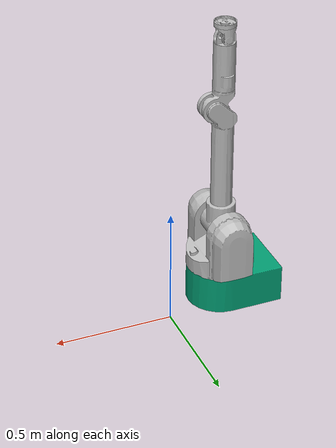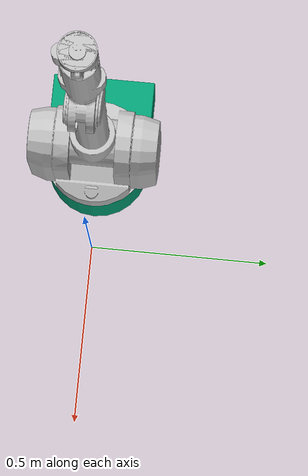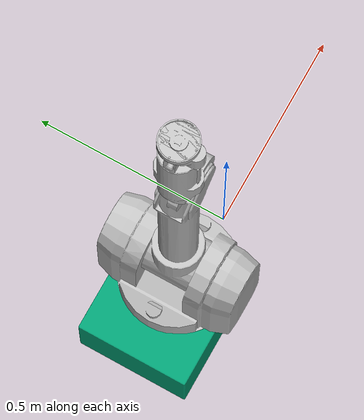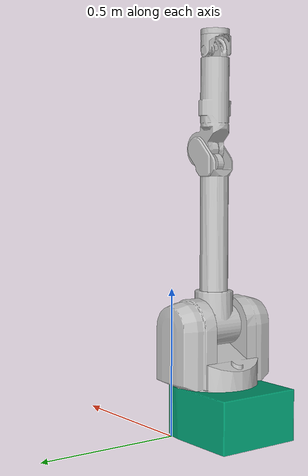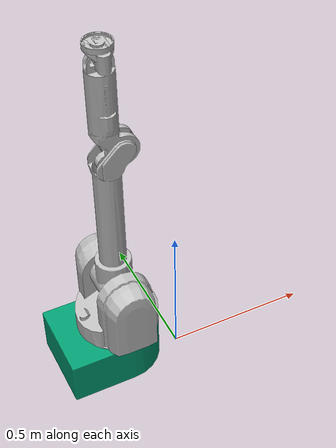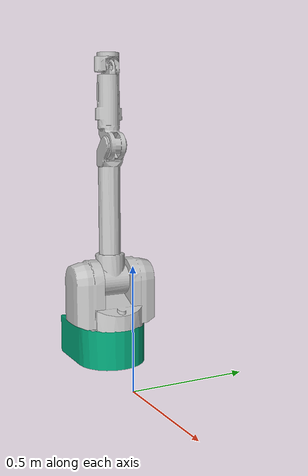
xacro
<?xml version="1.0"?>
<robot name="wam" xmlns:xacro="http://www.ros.org/wiki/xacro">

  <!-- Import all Gazebo-customization elements, including Gazebo colors -->
  <!-- xacro:include filename="$(find wam_description)/urdf/wam.gazebo" /-->

  <!-- Constants for robot dimensions -->
  <xacro:property name="PI" value="3.1415926535897931"/>
  <xacro:property name="joint_damping" value="100.0" />
  <xacro:property name="joint_friction" value="0.0" />
  <xacro:property name="joint_effort_limit" value="30.0" />
  <xacro:property name="joint_velocity_limit" value="2.0" />
  <xacro:property name="mechanical_reduction" value="1.0" />

  <!-- Used for fixing robot to Gazebo 'base_link' -->
  <link name="world"/>
  <joint name="fwf" type="fixed">
    <parent link="world"/>
    <child link="base_footprint"/>
  </joint>

  <!-- BASE FOOTPRINT -->
  <!-- base_footprint is a fictitious link(frame) that is on the ground right below base_link origin,
             navigation stack depends on this frame -->
  <link name="base_footprint">
      <visual>
          <origin xyz="0 0 0" rpy="0 0 0" />
          <geometry>
             <box size="0.001 0.001 0.001" />
          </geometry>
      </visual>

      <collision>
          <origin xyz="0 0 0" rpy="0 0 0" />
          <geometry>
            <box size="0.001 0.001 0.001" />
         </geometry>
     </collision>
  </link>

  <!-- Import Barrett WAM robot xacro file description -->
  <xacro:include filename="$(find wam_description)/urdf/wam_arm.urdf.xacro" />

  <joint name="base_footprint_wam_joint" type="fixed">
     <origin xyz="-0.220 0 0.410" rpy="0 0 0" />
     <parent link="base_footprint"/>
     <child link="wam_base_link"/>
     <!-- axis xyz="0 0 0" / -->
  </joint>

  <!-- GRIPPER -->

</robot>

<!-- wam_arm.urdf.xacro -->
<robot name="wam" xmlns:xacro="http://www.ros.org/wiki/xacro">

  <!-- Import all Gazebo-customization elements, including Gazebo colors -->
  <xacro:include filename="$(find wam_description)/urdf/wam.gazebo" />

  <!-- Constants for robot dimensions -->
  <xacro:property name="PI" value="3.1415926535897931"/>
  <xacro:property name="joint_damping" value="100.0" />
  <xacro:property name="joint_friction" value="0.0" />
  <xacro:property name="joint_effort_limit" value="30.0" />
  <xacro:property name="joint_velocity_limit" value="2.0" />
  <xacro:property name="mechanical_reduction" value="1.0" />

  <!-- BARRETT WAM ARM -->
  <!-- BASE_LINK (RED) -->
  <link name="wam_base_link">
    <inertial>
      <mass value="5.0" />
      <origin xyz="0 0 0" />
      <inertia  ixx="5.0" ixy="0.0"  ixz="0.0"  iyy="5.0"  iyz="0.0"  izz="5.0" />
    </inertial>
    <visual>
       <origin xyz="0 0 0" rpy="0 0 0" />
       <geometry>
	     <mesh filename="package://wam_description/meshes/wambase.dae"/>
       </geometry>
    </visual>
    <collision>
       <origin xyz="0 0 0" rpy="0 0 0 " />
       <geometry>
         <mesh filename="package://wam_description/meshes/wambase.dae"/>
       </geometry>
    </collision>
  </link>

  <!-- WAM ARM -->
  <link name="wam_link1">
    <inertial>
      <mass value="2.3936"/>
      <origin rpy="0 0 0" xyz="0.0 0.0 0.0"/>
      <inertia ixx="1.0" ixy="0.0" ixz="0.0" iyy="1.0" iyz="0.0" izz="1.0"/>
    </inertial>
    <visual>
      <origin rpy="0 0 0" xyz="0.0 0.0 0.0"/>
      <geometry name="wam_link1_visual">
        <mesh filename="package://wam_description/meshes/wam1.dae" scale="1.0 1.0 1.0"/>
      </geometry>
      <material name="Grey">
        <color rgba="0.75 0.75 0.75 1.0"/>
      </material>
    </visual>
    <collision>
      <origin rpy="0 0 0" xyz="0.0 0.0 0.0"/>
      <geometry name="wam_link1_collision">
        <mesh filename="package://wam_description/meshes/wam1.dae" scale="1.0 1.0 1.0"/>
      </geometry>
      <contact_coefficients kd="1.0" kp="1000.0" mu="0"/>
    </collision>
  </link>

  <joint name="j1_joint" type="revolute">
    <parent link="wam_base_link"/>
    <child link="wam_link1"/>
    <!-- origin xyz="0.125 0 0.55" rpy="0 0 0" / -->
    <origin xyz="0.0 0 0.0" rpy="0 0 0" />
    <axis xyz="0 0 1"/>
    <limit effort="${joint_effort_limit}" lower="-2.6" upper="2.6" velocity="${joint_velocity_limit}"/>
    <dynamics damping="${joint_damping}" friction="${joint_friction}"/>
  </joint>

  <transmission name="j1_transmission">
	<type>transmission_interface/SimpleTransmission</type>
    <joint name="j1_joint"/>
    <actuator name="j1">
	  <hardwareInterface>EffortJointInterface</hardwareInterface>
      <mechanicalReduction>1</mechanicalReduction>
      <motorTorqueConstant>1</motorTorqueConstant>
    </actuator>
  </transmission>

  <link name="wam_link2">
    <inertial>
      <origin rpy="0 0 0" xyz="0 0 0"/>
      <mass value="1.8487"/>
      <inertia ixx="1.0" ixy="0.0" ixz="0.0" iyy="0.1" iyz="0.0" izz="0.1"/>
    </inertial>
    <visual>
      <origin rpy="0 0 0" xyz="0.0 0.0 0.0"/>
      <geometry name="wam_link2_visual">
        <mesh filename="package://wam_description/meshes/wam2.dae" scale="1.0 1.0 1.0"/>
      </geometry>
      <material name="Grey">
        <color rgba="0.75 0.75 0.75 1.0"/>
      </material>
    </visual>
    <collision>
      <origin rpy="0 0 0" xyz="0.0 0.0 0.0"/>
      <geometry name="wam_link2_collision">
        <mesh filename="package://wam_description/meshes/wam2.dae" scale="1.0 1.0 1.0"/>
      </geometry>
      <contact_coefficients kd="1.0" kp="1000.0" mu="0"/>
    </collision>
  </link>

  <joint name="j2_joint" type="revolute">
    <parent link="wam_link1"/>
    <child link="wam_link2"/>
    <origin rpy="0 0 0" xyz="0.0 0.0 0.0"/>
    <axis xyz="0 1 0"/>
    <limit effort="${joint_effort_limit}" lower="-2.0" upper="2.0" velocity="${joint_velocity_limit}"/>
    <dynamics damping="${joint_damping}" friction="${joint_friction}"/>
  </joint>

  <transmission name="j2_transmission">
	<type>transmission_interface/SimpleTransmission</type>
    <joint name="j2_joint"/>
    <actuator name="j2">
	  <hardwareInterface>EffortJointInterface</hardwareInterface>
      <mechanicalReduction>1</mechanicalReduction>
      <motorTorqueConstant>1</motorTorqueConstant>
    </actuator>
  </transmission>

  <link name="wam_link3">
    <inertial>
      <mass value="0.43"/>
      <origin rpy="0 0 0" xyz="0 0 0.225"/>
      <inertia ixx="1.0" ixy="0.0" ixz="0.0" iyy="0.1" iyz="0.0" izz="0.1"/>
    </inertial>
    <visual>
      <origin rpy="0 0 0" xyz="0.0 0.0 0.0"/>
      <geometry name="wam_link3_visual">
        <mesh filename="package://wam_description/meshes/wam3.dae" scale="1.0 1.0 1.0"/>
      </geometry>
      <material name="Grey">
        <color rgba="0.75 0.75 0.75 1.0"/>
      </material>
    </visual>
    <collision>
      <origin rpy="0 0 0" xyz="0.0 0.0 0.0"/>
      <geometry name="wam_link3_collision">
        <mesh filename="package://wam_description/meshes/wam3.dae" scale="1.0 1.0 1.0"/>
      </geometry>
      <contact_coefficients kd="1.0" kp="1000.0" mu="0"/>
    </collision>
  </link>

  <joint name="j3_joint" type="revolute">
    <parent link="wam_link2"/>
    <child link="wam_link3"/>
    <origin rpy="0 0 0" xyz="0.0 0.0 0.0"/>
    <axis xyz="0 0 1"/>
    <limit effort="${joint_effort_limit}" lower="-2.8" upper="2.8" velocity="${joint_velocity_limit}"/>
    <dynamics damping="${joint_damping}" friction="${joint_friction}"/>
  </joint>

  <transmission name="j3_transmission">
	<type>transmission_interface/SimpleTransmission</type>
    <joint name="j3_joint"/>
    <actuator name="j3">
	  <hardwareInterface>EffortJointInterface</hardwareInterface>
      <mechanicalReduction>1</mechanicalReduction>
      <motorTorqueConstant>1</motorTorqueConstant>
    </actuator>
  </transmission>

  <link name="wam_link4">
    <inertial>
      <mass value="0.52"/>
      <origin rpy="0 0 0" xyz="-0.045 -0.15 0"/>
      <inertia ixx="1.0" ixy="0.0" ixz="0.0" iyy="0.1" iyz="0.0" izz="0.1"/>
    </inertial>
    <visual>
      <origin rpy="0 0 0" xyz="0.0 0.0 0.0"/>
      <geometry name="wam_link4_visual">
        <mesh filename="package://wam_description/meshes/wam4.dae" scale="1.0 1.0 1.0"/>
      </geometry>
      <material name="Grey">
        <color rgba="0.75 0.75 0.75 1.0"/>
      </material>
    </visual>
    <collision>
      <origin rpy="0 0 0" xyz="0.0 0.0 0.0"/>
      <geometry name="wam_link4_collision">
        <mesh filename="package://wam_description/meshes/wam4.dae" scale="1.0 1.0 1.0"/>
      </geometry>
      <contact_coefficients kd="1.0" kp="1000.0" mu="0"/>
    </collision>
  </link>

  <joint name="j4_joint" type="revolute">
    <parent link="wam_link3"/>
    <child link="wam_link4"/>
    <origin rpy="-1.57079632679 0 0" xyz="0.045 0.0 0.55"/>
    <axis xyz="0 0 1"/>
    <limit effort="${joint_effort_limit}" lower="-0.9" upper="2.8" velocity="${joint_velocity_limit}"/>
    <dynamics damping="${joint_damping}" friction="${joint_friction}"/>
  </joint>

  <transmission name="j4_transmission">
	<type>transmission_interface/SimpleTransmission</type>
    <joint name="j4_joint"/>
    <actuator name="j4">
	  <hardwareInterface>EffortJointInterface</hardwareInterface>
      <mechanicalReduction>1</mechanicalReduction>
      <motorTorqueConstant>1</motorTorqueConstant>
    </actuator>
  </transmission>

  <link name="wam_link5">
    <inertial>
      <origin rpy="0 0 0" xyz="0 0 0"/>
      <mass value="0.076675"/>
      <inertia ixx="1.0" ixy="0.0" ixz="0.0" iyy="0.1" iyz="0.0" izz="0.1"/>
    </inertial>
    <visual>
      <origin rpy="0 0 0" xyz="0.0 0.0 0.0"/>
      <geometry name="wam_link5_visual">
        <mesh filename="package://wam_description/meshes/wam5.dae" scale="1.0 1.0 1.0"/>
      </geometry>
      <material name="Grey">
        <color rgba="0.75 0.75 0.75 1.0"/>
      </material>
    </visual>
    <collision>
      <origin rpy="0 0 0" xyz="0.0 0.0 0.0"/>
      <geometry name="wam_link5_collision">
        <mesh filename="package://wam_description/meshes/wam5.dae" scale="1.0 1.0 1.0"/>
      </geometry>
      <contact_coefficients kd="1.0" kp="1000.0" mu="0"/>
    </collision>
  </link>

  <joint name="j5_joint" type="revolute">
    <parent link="wam_link4"/>
    <child link="wam_link5"/>
    <origin rpy="1.57079632679 0 0" xyz="-0.045 -0.3 0.0"/>
    <axis xyz="0 0 1"/>
    <limit effort="${joint_effort_limit}" lower="-4.8" upper="1.3" velocity="${joint_velocity_limit}"/>
    <dynamics damping="${joint_damping}" friction="${joint_friction}"/>
  </joint>

  <transmission name="j5_transmission">
	<type>transmission_interface/SimpleTransmission</type>
    <joint name="j5_joint"/>
    <actuator name="j5">
	  <hardwareInterface>EffortJointInterface</hardwareInterface>
      <mechanicalReduction>1</mechanicalReduction>
      <motorTorqueConstant>1</motorTorqueConstant>
    </actuator>
  </transmission>

  <link name="wam_link6">
    <inertial>
      <origin rpy="0 0 0" xyz="0 0 0"/>
      <mass value="0.10695"/>
      <inertia ixx="1.0" ixy="0.0" ixz="0.0" iyy="0.1" iyz="0.0" izz="0.1"/>
    </inertial>
    <visual>
      <origin rpy="0 0 0" xyz="0.0 0.0 0.0"/>
      <geometry name="wam_link6_visual">
        <mesh filename="package://wam_description/meshes/wam6.dae" scale="1.0 1.0 1.0"/>
      </geometry>
      <material name="Grey">
        <color rgba="0.75 0.75 0.75 1.0"/>
      </material>
    </visual>
    <collision>
      <origin rpy="0 0 0" xyz="0.0 0.0 0.0"/>
      <geometry name="wam_link6_collision">
        <mesh filename="package://wam_description/meshes/wam6.dae" scale="1.0 1.0 1.0"/>
      </geometry>
      <contact_coefficients kd="1.0" kp="1000.0" mu="0"/>
    </collision>
  </link>

  <joint name="j6_joint" type="revolute">
    <parent link="wam_link5"/>
    <child link="wam_link6"/>
    <origin rpy="-1.57079632679 0 0" xyz="0.0 0.0 0.0"/>
    <axis xyz="0 0 1"/>
    <limit effort="${joint_effort_limit}" lower="-1.6" upper="1.6" velocity="${joint_velocity_limit}"/>
    <dynamics damping="${joint_damping}" friction="${joint_friction}"/>
  </joint>

  <transmission name="j6_transmission">
	<type>transmission_interface/SimpleTransmission</type>
    <joint name="j6_joint"/>
    <actuator name="j6">
	  <hardwareInterface>EffortJointInterface</hardwareInterface>
      <mechanicalReduction>1</mechanicalReduction>
      <motorTorqueConstant>1</motorTorqueConstant>
    </actuator>
  </transmission>

  <link name="wam_link7">
    <inertial>
      <origin rpy="0 0 0" xyz="0 0 0"/>
      <mass value="0.013925"/>
      <inertia ixx="1.0" ixy="0.0" ixz="0.0" iyy="0.1" iyz="0.0" izz="0.1"/>
    </inertial>
    <visual>
      <origin rpy="0 0 0" xyz="0.0 0.0 0.0"/>
      <geometry name="wam_link7_visual">
        <mesh filename="package://wam_description/meshes/wam7.dae" scale="1.0 1.0 1.0"/>
      </geometry>
      <material name="Grey">
        <color rgba="0.75 0.75 0.75 1.0"/>
      </material>
    </visual>
    <collision>
      <origin rpy="0 0 0" xyz="0.0 0.0 0.0"/>
      <geometry name="wam_link7_collision">
        <mesh filename="package://wam_description/meshes/wam7.dae" scale="1.0 1.0 1.0"/>
      </geometry>
      <contact_coefficients kd="1.0" kp="1000.0" mu="0"/>
    </collision>
  </link>

  <joint name="j7_joint" type="revolute">
    <parent link="wam_link6"/>
    <child link="wam_link7"/>
    <origin rpy="1.57079632679 0 0" xyz="0.0 0.0 0.0"/>
    <axis xyz="0 0 1"/>
    <limit effort="${joint_effort_limit}" lower="-2.2" upper="2.2" velocity="${joint_velocity_limit}"/>
    <dynamics damping="${joint_damping}" friction="${joint_friction}"/>
  </joint>

  <transmission name="j7_transmission">
	<type>transmission_interface/SimpleTransmission</type>
    <joint name="j7_joint"/>
    <actuator name="j7">
	  <hardwareInterface>EffortJointInterface</hardwareInterface>
      <mechanicalReduction>1</mechanicalReduction>
      <motorTorqueConstant>1</motorTorqueConstant>
    </actuator>
  </transmission>

  <link name="wam_tcp"/>
  <joint name="wamtcp_fix" type="fixed">
    <parent link="wam_link7"/>
    <child link="wam_tcp"/>
    <origin rpy="0 0 0" xyz="0.0 0.0 0.2"/>
  </joint>

  <!-- GRIPPER -->

</robot>
